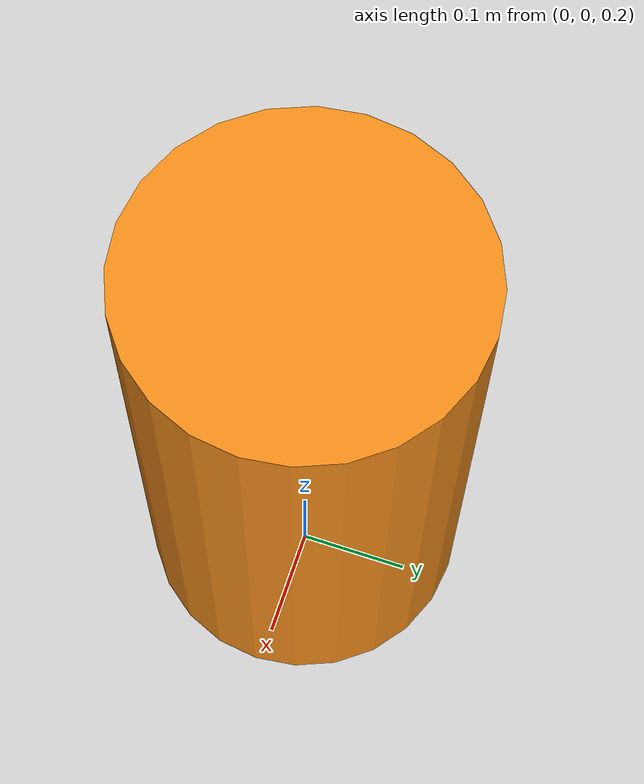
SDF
<?xml version="1.0" encoding="UTF-8"?>
<sdf version="1.5">
  <model name="cone">
    <pose>0 0 0.5 0 0 0</pose>
    <link name="cone_link">
      <inertial>
        <mass>0.01</mass>
      </inertial>
      <collision name="collision">
        <geometry>
          <cylinder>
            <radius>0.1425</radius>
            <length>0.505</length>
          </cylinder>
        </geometry>
      </collision>
      <visual name="visual">
        <geometry>
          <cylinder>
            <radius>0.1425</radius>
            <length>0.505</length>
          </cylinder>
        </geometry>
        <material>
          <script>
            <uri>file://media/materials/scripts/gazebo.material</uri>
            <name>Gazebo/Orange</name>
          </script>
        </material>
      </visual>
    </link>
  </model>
</sdf>
